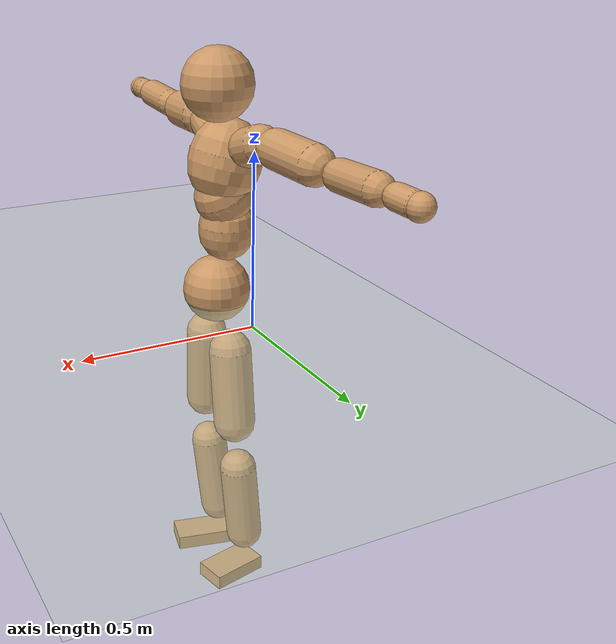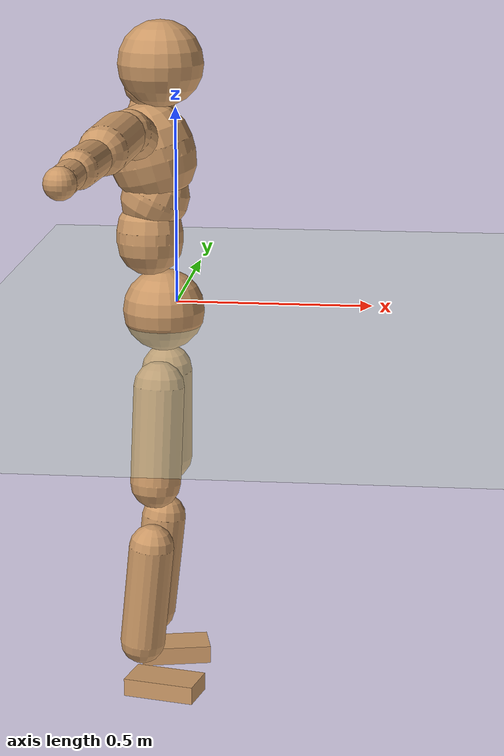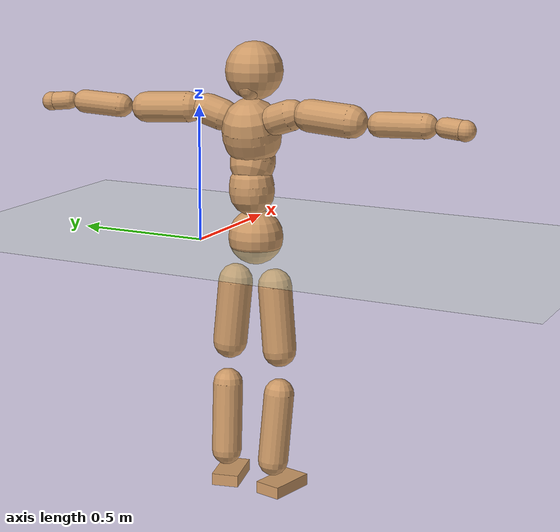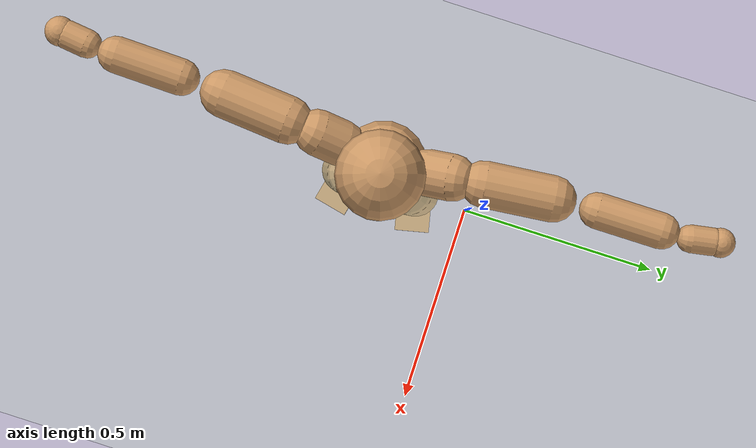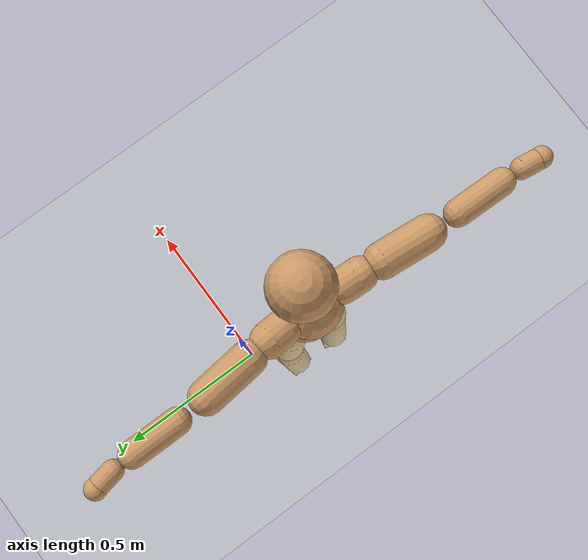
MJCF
<mujoco model="humanoid">
  <compiler coordinate="local"/>
  <default>
    <joint damping="0.0" armature="0.01" stiffness="0.0" limited="true"/>
    <geom conaffinity="1" condim="3" contype="7" margin="0.001" rgba="0.8 0.6 .4 1"/>
  </default>
  <asset>
    <texture type="skybox" builtin="gradient" rgb1=".4 .5 .6" rgb2="0 0 0" width="100" height="100"/>
    <texture builtin="flat" height="1278" mark="cross" markrgb="1 1 1" name="texgeom" random="0.01" rgb1="0.8 0.6 0.4" rgb2="0.8 0.6 0.4" type="cube" width="127"/>
    <texture builtin="checker" height="100" name="texplane" rgb1="0 0 0" rgb2="0.8 0.8 0.8" type="2d" width="100"/>
    <material name="MatPlane" reflectance="0.5" shininess="1" specular="1" texrepeat="60 60" texture="texplane"/>
    <material name="geom" texture="texgeom" texuniform="true"/>
  </asset>
  <worldbody>
    <light cutoff="100" diffuse="1 1 1" dir="-0 0 -1.3" directional="true" exponent="1" pos="0 0 1.3" specular=".1 .1 .1"/>
    <geom conaffinity="1" condim="3" name="floor" pos="0 0 0" rgba="0.8 0.9 0.8 1" size="100 100 .2" type="plane" material="MatPlane"/>
    <body name="Pelvis" pos="-0.0012 -0.232 0.036">
      <freejoint name="Pelvis"/>
      <geom type="sphere" contype="1" conaffinity="1" density="500" size="0.1008" pos="0.0000 0.0000 0.0000" name="Pelvis"/>
      <body name="L_Hip" pos="-0.0034 0.0734 -0.0952">
        <joint name="L_Hip_x" type="hinge" pos="0 0 0" axis="1 0 0" stiffness="800" damping="80" armature="0.02" range="-180.0000 180.0000"/>
        <joint name="L_Hip_y" type="hinge" pos="0 0 0" axis="0 1 0" stiffness="800" damping="80" armature="0.02" range="-180.0000 180.0000"/>
        <joint name="L_Hip_z" type="hinge" pos="0 0 0" axis="0 0 1" stiffness="800" damping="80" armature="0.02" range="-180.0000 180.0000"/>
        <geom type="capsule" contype="1" conaffinity="1" density="500" fromto="-0.0016 0.0070 -0.0783 -0.0063 0.0281 -0.3132" size="0.0633" name="L_Hip"/>
        <body name="L_Knee" pos="-0.0079 0.0351 -0.3915">
          <joint name="L_Knee_x" type="hinge" pos="0 0 0" axis="1 0 0" stiffness="800" damping="80" armature="0.02" range="-180.0000 180.0000"/>
          <joint name="L_Knee_y" type="hinge" pos="0 0 0" axis="0 1 0" stiffness="800" damping="80" armature="0.02" range="-180.0000 180.0000"/>
          <joint name="L_Knee_z" type="hinge" pos="0 0 0" axis="0 0 1" stiffness="800" damping="80" armature="0.02" range="-180.0000 180.0000"/>
          <geom type="capsule" contype="1" conaffinity="1" density="500" fromto="-0.0093 -0.0030 -0.0847 -0.0371 -0.0118 -0.3390" size="0.0561" name="L_Knee"/>
          <body name="L_Ankle" pos="-0.0463 -0.0148 -0.4237">
            <joint name="L_Ankle_x" type="hinge" pos="0 0 0" axis="1 0 0" stiffness="800" damping="80" armature="0.02" range="-180.0000 180.0000"/>
            <joint name="L_Ankle_y" type="hinge" pos="0 0 0" axis="0 1 0" stiffness="800" damping="80" armature="0.02" range="-180.0000 180.0000"/>
            <joint name="L_Ankle_z" type="hinge" pos="0 0 0" axis="0 0 1" stiffness="800" damping="80" armature="0.02" range="-180.0000 180.0000"/>
            <geom type="box" contype="1" conaffinity="1" density="500" pos="0.0625 0.0140 -0.0296" size="0.0882 0.0507 0.0223" quat="0.9939 0.0000 0.0000 0.1102" name="L_Ankle"/>
            <body name="L_Toe" pos="0.1249 0.028 -0.0592">
              <joint name="L_Toe_x" type="hinge" pos="0 0 0" axis="1 0 0" stiffness="500" damping="50" armature="0.02" range="-180.0000 180.0000"/>
              <joint name="L_Toe_y" type="hinge" pos="0 0 0" axis="0 1 0" stiffness="500" damping="50" armature="0.02" range="-180.0000 180.0000"/>
              <joint name="L_Toe_z" type="hinge" pos="0 0 0" axis="0 0 1" stiffness="500" damping="50" armature="0.02" range="-180.0000 180.0000"/>
              <geom type="box" contype="1" conaffinity="1" density="500" pos="0.0000 0.0000 0.0287" size="0.0011 0.0025 0.0011" quat="0.9933 0.0000 0.0000 0.1159" name="L_Toe"/>
            </body>
          </body>
        </body>
      </body>
      <body name="R_Hip" pos="-0.0006 -0.0714 -0.0947">
        <joint name="R_Hip_x" type="hinge" pos="0 0 0" axis="1 0 0" stiffness="800" damping="80" armature="0.02" range="-180.0000 180.0000"/>
        <joint name="R_Hip_y" type="hinge" pos="0 0 0" axis="0 1 0" stiffness="800" damping="80" armature="0.02" range="-180.0000 180.0000"/>
        <joint name="R_Hip_z" type="hinge" pos="0 0 0" axis="0 0 1" stiffness="800" damping="80" armature="0.02" range="-180.0000 180.0000"/>
        <geom type="capsule" contype="1" conaffinity="1" density="500" fromto="-0.0024 -0.0081 -0.0800 -0.0097 -0.0322 -0.3199" size="0.0623" name="R_Hip"/>
        <body name="R_Knee" pos="-0.0121 -0.0403 -0.3998">
          <joint name="R_Knee_x" type="hinge" pos="0 0 0" axis="1 0 0" stiffness="800" damping="80" armature="0.02" range="-180.0000 180.0000"/>
          <joint name="R_Knee_y" type="hinge" pos="0 0 0" axis="0 1 0" stiffness="800" damping="80" armature="0.02" range="-180.0000 180.0000"/>
          <joint name="R_Knee_z" type="hinge" pos="0 0 0" axis="0 0 1" stiffness="800" damping="80" armature="0.02" range="-180.0000 180.0000"/>
          <geom type="capsule" contype="1" conaffinity="1" density="500" fromto="-0.0089 0.0034 -0.0851 -0.0356 0.0136 -0.3404" size="0.056" name="R_Knee"/>
          <body name="R_Ankle" pos="-0.0445 0.0171 -0.4255">
            <joint name="R_Ankle_x" type="hinge" pos="0 0 0" axis="1 0 0" stiffness="800" damping="80" armature="0.02" range="-180.0000 180.0000"/>
            <joint name="R_Ankle_y" type="hinge" pos="0 0 0" axis="0 1 0" stiffness="800" damping="80" armature="0.02" range="-180.0000 180.0000"/>
            <joint name="R_Ankle_z" type="hinge" pos="0 0 0" axis="0 0 1" stiffness="800" damping="80" armature="0.02" range="-180.0000 180.0000"/>
            <geom type="box" contype="1" conaffinity="1" density="500" pos="0.0646 -0.0143 -0.0258" size="0.0901 0.0503 0.0224" quat="0.9940 0.0000 0.0000 -0.1090" name="R_Ankle"/>
            <body name="R_Toe" pos="0.1292 -0.0287 -0.0517">
              <joint name="R_Toe_x" type="hinge" pos="0 0 0" axis="1 0 0" stiffness="500" damping="50" armature="0.02" range="-180.0000 180.0000"/>
              <joint name="R_Toe_y" type="hinge" pos="0 0 0" axis="0 1 0" stiffness="500" damping="50" armature="0.02" range="-180.0000 180.0000"/>
              <joint name="R_Toe_z" type="hinge" pos="0 0 0" axis="0 0 1" stiffness="500" damping="50" armature="0.02" range="-180.0000 180.0000"/>
              <geom type="box" contype="1" conaffinity="1" density="500" pos="0.0000 0.0000 0.0261" size="0.0011 0.0025 0.0011" quat="0.9950 0.0000 0.0000 -0.1001" name="R_Toe"/>
            </body>
          </body>
        </body>
      </body>
      <body name="Torso" pos="-0.0326 -0.0025 0.1146">
        <joint name="Torso_x" type="hinge" pos="0 0 0" axis="1 0 0" stiffness="1000" damping="100" armature="0.02" range="-180.0000 180.0000"/>
        <joint name="Torso_y" type="hinge" pos="0 0 0" axis="0 1 0" stiffness="1000" damping="100" armature="0.02" range="-180.0000 180.0000"/>
        <joint name="Torso_z" type="hinge" pos="0 0 0" axis="0 0 1" stiffness="1000" damping="100" armature="0.02" range="-180.0000 180.0000"/>
        <geom type="capsule" contype="1" conaffinity="1" density="500" fromto="-0.0000 0.0033 0.0810 -0.0000 0.0022 0.0540" size="0.0819" name="Torso"/>
        <body name="Spine" pos="0 0.0056 0.135">
          <joint name="Spine_x" type="hinge" pos="0 0 0" axis="1 0 0" stiffness="1000" damping="100" armature="0.02" range="-180.0000 180.0000"/>
          <joint name="Spine_y" type="hinge" pos="0 0 0" axis="0 1 0" stiffness="1000" damping="100" armature="0.02" range="-180.0000 180.0000"/>
          <joint name="Spine_z" type="hinge" pos="0 0 0" axis="0 0 1" stiffness="1000" damping="100" armature="0.02" range="-180.0000 180.0000"/>
          <geom type="capsule" contype="1" conaffinity="1" density="500" fromto="0.0162 0.0007 0.0330 0.0108 0.0005 0.0220" size="0.0819" name="Spine"/>
          <body name="Chest" pos="0.027 0.0012 0.055">
            <joint name="Chest_x" type="hinge" pos="0 0 0" axis="1 0 0" stiffness="1000" damping="100" armature="0.02" range="-180.0000 180.0000"/>
            <joint name="Chest_y" type="hinge" pos="0 0 0" axis="0 1 0" stiffness="1000" damping="100" armature="0.02" range="-180.0000 180.0000"/>
            <joint name="Chest_z" type="hinge" pos="0 0 0" axis="0 0 1" stiffness="1000" damping="100" armature="0.02" range="-180.0000 180.0000"/>
            <geom type="capsule" contype="1" conaffinity="1" density="500" fromto="-0.0261 -0.0013 0.0984 -0.0174 -0.0008 0.0656" size="0.1065" name="Chest"/>
            <body name="Neck" pos="-0.0499 -0.003 0.2312">
              <joint name="Neck_x" type="hinge" pos="0 0 0" axis="1 0 0" stiffness="500" damping="50" armature="0.02" range="-180.0000 180.0000"/>
              <joint name="Neck_y" type="hinge" pos="0 0 0" axis="0 1 0" stiffness="500" damping="50" armature="0.02" range="-180.0000 180.0000"/>
              <joint name="Neck_z" type="hinge" pos="0 0 0" axis="0 0 1" stiffness="500" damping="50" armature="0.02" range="-180.0000 180.0000"/>
              <geom type="capsule" contype="1" conaffinity="1" density="500" fromto="0.0105 0.0010 0.0132 0.0420 0.0038 0.0528" size="0.0464" name="Neck"/>
              <body name="Head" pos="0.0525 0.0048 0.066">
                <joint name="Head_x" type="hinge" pos="0 0 0" axis="1 0 0" stiffness="500" damping="50" armature="0.02" range="-180.0000 180.0000"/>
                <joint name="Head_y" type="hinge" pos="0 0 0" axis="0 1 0" stiffness="500" damping="50" armature="0.02" range="-180.0000 180.0000"/>
                <joint name="Head_z" type="hinge" pos="0 0 0" axis="0 0 1" stiffness="500" damping="50" armature="0.02" range="-180.0000 180.0000"/>
                <geom type="sphere" contype="1" conaffinity="1" density="500" size="0.1046" pos="0.0000 0.0000 0.0000" name="Head"/>
              </body>
            </body>
            <body name="L_Thorax" pos="-0.0383 0.085 0.1318">
              <joint name="L_Thorax_x" type="hinge" pos="0 0 0" axis="1 0 0" stiffness="500" damping="50" armature="0.02" range="-180.0000 180.0000"/>
              <joint name="L_Thorax_y" type="hinge" pos="0 0 0" axis="0 1 0" stiffness="500" damping="50" armature="0.02" range="-180.0000 180.0000"/>
              <joint name="L_Thorax_z" type="hinge" pos="0 0 0" axis="0 0 1" stiffness="500" damping="50" armature="0.02" range="-180.0000 180.0000"/>
              <geom type="capsule" contype="1" conaffinity="1" density="500" fromto="-0.0021 0.0193 0.0062 -0.0083 0.0772 0.0249" size="0.0564" name="L_Thorax"/>
              <body name="L_Shoulder" pos="-0.0104 0.0965 0.0311">
                <joint name="L_Shoulder_x" type="hinge" pos="0 0 0" axis="1 0 0" stiffness="500" damping="50" armature="0.02" range="-720.0000 720.0000"/>
                <joint name="L_Shoulder_y" type="hinge" pos="0 0 0" axis="0 1 0" stiffness="500" damping="50" armature="0.02" range="-720.0000 720.0000"/>
                <joint name="L_Shoulder_z" type="hinge" pos="0 0 0" axis="0 0 1" stiffness="500" damping="50" armature="0.02" range="-720.0000 720.0000"/>
                <geom type="capsule" contype="1" conaffinity="1" density="500" fromto="-0.0057 0.0548 -0.0026 -0.0229 0.2191 -0.0103" size="0.0557" name="L_Shoulder"/>
                <body name="L_Elbow" pos="-0.0286 0.2739 -0.0128">
                  <joint name="L_Elbow_x" type="hinge" pos="0 0 0" axis="1 0 0" stiffness="500" damping="50" armature="0.02" range="-720.0000 720.0000"/>
                  <joint name="L_Elbow_y" type="hinge" pos="0 0 0" axis="0 1 0" stiffness="500" damping="50" armature="0.02" range="-720.0000 720.0000"/>
                  <joint name="L_Elbow_z" type="hinge" pos="0 0 0" axis="0 0 1" stiffness="500" damping="50" armature="0.02" range="-720.0000 720.0000"/>
                  <geom type="capsule" contype="1" conaffinity="1" density="500" fromto="-0.0001 0.0522 0.0019 -0.0005 0.2089 0.0078" size="0.0431" name="L_Elbow"/>
                  <body name="L_Wrist" pos="-0.0007 0.2611 0.0097">
                    <joint name="L_Wrist_x" type="hinge" pos="0 0 0" axis="1 0 0" stiffness="300" damping="30" armature="0.02" range="-180.0000 180.0000"/>
                    <joint name="L_Wrist_y" type="hinge" pos="0 0 0" axis="0 1 0" stiffness="300" damping="30" armature="0.02" range="-180.0000 180.0000"/>
                    <joint name="L_Wrist_z" type="hinge" pos="0 0 0" axis="0 0 1" stiffness="300" damping="30" armature="0.02" range="-180.0000 180.0000"/>
                    <geom type="capsule" contype="1" conaffinity="1" density="500" fromto="-0.0032 0.0176 -0.0016 -0.0126 0.0704 -0.0064" size="0.0334" name="L_Wrist"/>
                    <body name="L_Hand" pos="-0.0158 0.088 -0.008">
                      <joint name="L_Hand_x" type="hinge" pos="0 0 0" axis="1 0 0" stiffness="300" damping="30" armature="0.02" range="-180.0000 180.0000"/>
                      <joint name="L_Hand_y" type="hinge" pos="0 0 0" axis="0 1 0" stiffness="300" damping="30" armature="0.02" range="-180.0000 180.0000"/>
                      <joint name="L_Hand_z" type="hinge" pos="0 0 0" axis="0 0 1" stiffness="300" damping="30" armature="0.02" range="-180.0000 180.0000"/>
                      <geom type="sphere" contype="1" conaffinity="1" density="500" size="0.0352" pos="0.0000 0.0000 0.0000" name="L_Hand"/>
                    </body>
                  </body>
                </body>
              </body>
            </body>
            <body name="R_Thorax" pos="-0.0425 -0.0883 0.1289">
              <joint name="R_Thorax_x" type="hinge" pos="0 0 0" axis="1 0 0" stiffness="500" damping="50" armature="0.02" range="-180.0000 180.0000"/>
              <joint name="R_Thorax_y" type="hinge" pos="0 0 0" axis="0 1 0" stiffness="500" damping="50" armature="0.02" range="-180.0000 180.0000"/>
              <joint name="R_Thorax_z" type="hinge" pos="0 0 0" axis="0 0 1" stiffness="500" damping="50" armature="0.02" range="-180.0000 180.0000"/>
              <geom type="capsule" contype="1" conaffinity="1" density="500" fromto="-0.0019 -0.0203 0.0069 -0.0076 -0.0812 0.0275" size="0.0554" name="R_Thorax"/>
              <body name="R_Shoulder" pos="-0.0095 -0.1015 0.0343">
                <joint name="R_Shoulder_x" type="hinge" pos="0 0 0" axis="1 0 0" stiffness="500" damping="50" armature="0.02" range="-720.0000 720.0000"/>
                <joint name="R_Shoulder_y" type="hinge" pos="0 0 0" axis="0 1 0" stiffness="500" damping="50" armature="0.02" range="-720.0000 720.0000"/>
                <joint name="R_Shoulder_z" type="hinge" pos="0 0 0" axis="0 0 1" stiffness="500" damping="50" armature="0.02" range="-720.0000 720.0000"/>
                <geom type="capsule" contype="1" conaffinity="1" density="500" fromto="-0.0046 -0.0537 -0.0029 -0.0183 -0.2148 -0.0117" size="0.0575" name="R_Shoulder"/>
                <body name="R_Elbow" pos="-0.0228 -0.2685 -0.0146">
                  <joint name="R_Elbow_x" type="hinge" pos="0 0 0" axis="1 0 0" stiffness="500" damping="50" armature="0.02" range="-720.0000 720.0000"/>
                  <joint name="R_Elbow_y" type="hinge" pos="0 0 0" axis="0 1 0" stiffness="500" damping="50" armature="0.02" range="-720.0000 720.0000"/>
                  <joint name="R_Elbow_z" type="hinge" pos="0 0 0" axis="0 0 1" stiffness="500" damping="50" armature="0.02" range="-720.0000 720.0000"/>
                  <geom type="capsule" contype="1" conaffinity="1" density="500" fromto="-0.0011 -0.0535 0.0018 -0.0045 -0.2141 0.0073" size="0.0437" name="R_Elbow"/>
                  <body name="R_Wrist" pos="-0.0056 -0.2676 0.0091">
                    <joint name="R_Wrist_x" type="hinge" pos="0 0 0" axis="1 0 0" stiffness="300" damping="30" armature="0.02" range="-180.0000 180.0000"/>
                    <joint name="R_Wrist_y" type="hinge" pos="0 0 0" axis="0 1 0" stiffness="300" damping="30" armature="0.02" range="-180.0000 180.0000"/>
                    <joint name="R_Wrist_z" type="hinge" pos="0 0 0" axis="0 0 1" stiffness="300" damping="30" armature="0.02" range="-180.0000 180.0000"/>
                    <geom type="capsule" contype="1" conaffinity="1" density="500" fromto="-0.0021 -0.0178 -0.0012 -0.0086 -0.0712 -0.0049" size="0.0344" name="R_Wrist"/>
                    <body name="R_Hand" pos="-0.0107 -0.089 -0.0061">
                      <joint name="R_Hand_x" type="hinge" pos="0 0 0" axis="1 0 0" stiffness="300" damping="30" armature="0.02" range="-180.0000 180.0000"/>
                      <joint name="R_Hand_y" type="hinge" pos="0 0 0" axis="0 1 0" stiffness="300" damping="30" armature="0.02" range="-180.0000 180.0000"/>
                      <joint name="R_Hand_z" type="hinge" pos="0 0 0" axis="0 0 1" stiffness="300" damping="30" armature="0.02" range="-180.0000 180.0000"/>
                      <geom type="sphere" contype="1" conaffinity="1" density="500" size="0.0357" pos="0.0000 0.0000 0.0000" name="R_Hand"/>
                    </body>
                  </body>
                </body>
              </body>
            </body>
          </body>
        </body>
      </body>
    </body>
  </worldbody>
  <actuator>
    <motor name="L_Hip_x" joint="L_Hip_x" gear="500"/>
    <motor name="L_Hip_y" joint="L_Hip_y" gear="500"/>
    <motor name="L_Hip_z" joint="L_Hip_z" gear="500"/>
    <motor name="L_Knee_x" joint="L_Knee_x" gear="500"/>
    <motor name="L_Knee_y" joint="L_Knee_y" gear="500"/>
    <motor name="L_Knee_z" joint="L_Knee_z" gear="500"/>
    <motor name="L_Ankle_x" joint="L_Ankle_x" gear="500"/>
    <motor name="L_Ankle_y" joint="L_Ankle_y" gear="500"/>
    <motor name="L_Ankle_z" joint="L_Ankle_z" gear="500"/>
    <motor name="L_Toe_x" joint="L_Toe_x" gear="500"/>
    <motor name="L_Toe_y" joint="L_Toe_y" gear="500"/>
    <motor name="L_Toe_z" joint="L_Toe_z" gear="500"/>
    <motor name="R_Hip_x" joint="R_Hip_x" gear="500"/>
    <motor name="R_Hip_y" joint="R_Hip_y" gear="500"/>
    <motor name="R_Hip_z" joint="R_Hip_z" gear="500"/>
    <motor name="R_Knee_x" joint="R_Knee_x" gear="500"/>
    <motor name="R_Knee_y" joint="R_Knee_y" gear="500"/>
    <motor name="R_Knee_z" joint="R_Knee_z" gear="500"/>
    <motor name="R_Ankle_x" joint="R_Ankle_x" gear="500"/>
    <motor name="R_Ankle_y" joint="R_Ankle_y" gear="500"/>
    <motor name="R_Ankle_z" joint="R_Ankle_z" gear="500"/>
    <motor name="R_Toe_x" joint="R_Toe_x" gear="500"/>
    <motor name="R_Toe_y" joint="R_Toe_y" gear="500"/>
    <motor name="R_Toe_z" joint="R_Toe_z" gear="500"/>
    <motor name="Torso_x" joint="Torso_x" gear="500"/>
    <motor name="Torso_y" joint="Torso_y" gear="500"/>
    <motor name="Torso_z" joint="Torso_z" gear="500"/>
    <motor name="Spine_x" joint="Spine_x" gear="500"/>
    <motor name="Spine_y" joint="Spine_y" gear="500"/>
    <motor name="Spine_z" joint="Spine_z" gear="500"/>
    <motor name="Chest_x" joint="Chest_x" gear="500"/>
    <motor name="Chest_y" joint="Chest_y" gear="500"/>
    <motor name="Chest_z" joint="Chest_z" gear="500"/>
    <motor name="Neck_x" joint="Neck_x" gear="500"/>
    <motor name="Neck_y" joint="Neck_y" gear="500"/>
    <motor name="Neck_z" joint="Neck_z" gear="500"/>
    <motor name="Head_x" joint="Head_x" gear="500"/>
    <motor name="Head_y" joint="Head_y" gear="500"/>
    <motor name="Head_z" joint="Head_z" gear="500"/>
    <motor name="L_Thorax_x" joint="L_Thorax_x" gear="500"/>
    <motor name="L_Thorax_y" joint="L_Thorax_y" gear="500"/>
    <motor name="L_Thorax_z" joint="L_Thorax_z" gear="500"/>
    <motor name="L_Shoulder_x" joint="L_Shoulder_x" gear="500"/>
    <motor name="L_Shoulder_y" joint="L_Shoulder_y" gear="500"/>
    <motor name="L_Shoulder_z" joint="L_Shoulder_z" gear="500"/>
    <motor name="L_Elbow_x" joint="L_Elbow_x" gear="500"/>
    <motor name="L_Elbow_y" joint="L_Elbow_y" gear="500"/>
    <motor name="L_Elbow_z" joint="L_Elbow_z" gear="500"/>
    <motor name="L_Wrist_x" joint="L_Wrist_x" gear="500"/>
    <motor name="L_Wrist_y" joint="L_Wrist_y" gear="500"/>
    <motor name="L_Wrist_z" joint="L_Wrist_z" gear="500"/>
    <motor name="L_Hand_x" joint="L_Hand_x" gear="500"/>
    <motor name="L_Hand_y" joint="L_Hand_y" gear="500"/>
    <motor name="L_Hand_z" joint="L_Hand_z" gear="500"/>
    <motor name="R_Thorax_x" joint="R_Thorax_x" gear="500"/>
    <motor name="R_Thorax_y" joint="R_Thorax_y" gear="500"/>
    <motor name="R_Thorax_z" joint="R_Thorax_z" gear="500"/>
    <motor name="R_Shoulder_x" joint="R_Shoulder_x" gear="500"/>
    <motor name="R_Shoulder_y" joint="R_Shoulder_y" gear="500"/>
    <motor name="R_Shoulder_z" joint="R_Shoulder_z" gear="500"/>
    <motor name="R_Elbow_x" joint="R_Elbow_x" gear="500"/>
    <motor name="R_Elbow_y" joint="R_Elbow_y" gear="500"/>
    <motor name="R_Elbow_z" joint="R_Elbow_z" gear="500"/>
    <motor name="R_Wrist_x" joint="R_Wrist_x" gear="500"/>
    <motor name="R_Wrist_y" joint="R_Wrist_y" gear="500"/>
    <motor name="R_Wrist_z" joint="R_Wrist_z" gear="500"/>
    <motor name="R_Hand_x" joint="R_Hand_x" gear="500"/>
    <motor name="R_Hand_y" joint="R_Hand_y" gear="500"/>
    <motor name="R_Hand_z" joint="R_Hand_z" gear="500"/>
  </actuator>
  <contact>
    <exclude body1="Torso" body2="Chest"/>
    <exclude body1="Head" body2="Chest"/>
    <exclude body1="R_Knee" body2="R_Toe"/>
    <exclude body1="R_Knee" body2="L_Ankle"/>
    <exclude body1="R_Knee" body2="L_Toe"/>
    <exclude body1="L_Knee" body2="L_Toe"/>
    <exclude body1="L_Knee" body2="R_Ankle"/>
    <exclude body1="L_Knee" body2="R_Toe"/>
    <exclude body1="L_Shoulder" body2="Chest"/>
    <exclude body1="R_Shoulder" body2="Chest"/>
  </contact>
  <sensor/>
  <size njmax="700" nconmax="700"/>
</mujoco>
